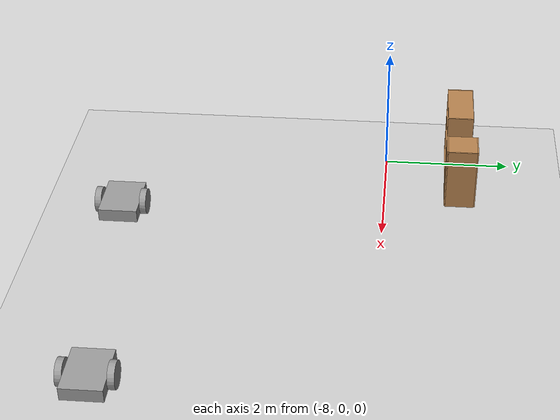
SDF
<sdf version="1.6">
 <world name="default">
  <model name="ground_plane">
   <static>1</static>
   <link name="link">
    <collision name="collision">
     <geometry><plane><normal>0 0 1</normal><size>100 100</size></plane></geometry>
     <surface>
      <contact><collide_bitmask>65535</collide_bitmask></contact>
      <friction><ode><mu>100</mu><mu2>50</mu2></ode></friction>
     </surface>
    </collision>
    <visual name="visual">
     <cast_shadows>0</cast_shadows>
     <geometry><plane><normal>0 0 1</normal><size>100 100</size></plane></geometry>
     <material>
      <script><uri>file://media/materials/scripts/gazebo.material</uri><name>Gazebo/Grey</name></script>
     </material>
    </visual>
   </link>
  </model>
  <model name="bookshelf">
   <static>1</static>
   <link name="link">
    <inertial><mass>1</mass></inertial>
    <collision name="back">
     <pose>0 0.005 0.6 0 -0 0</pose>
     <geometry><box><size>0.9 0.01 1.2</size></box></geometry>
    </collision>
    <visual name="visual1">
     <pose>0 0.005 0.6 0 -0 0</pose>
     <geometry><box><size>0.9 0.01 1.2</size></box></geometry>
     <material>
      <script><uri>file://media/materials/scripts/gazebo.material</uri><name>Gazebo/Wood</name></script>
     </material>
    </visual>
    <collision name="left_side">
     <pose>0.45 -0.195 0.6 0 -0 0</pose>
     <geometry><box><size>0.02 0.4 1.2</size></box></geometry>
    </collision>
    <visual name="visual2">
     <pose>0.45 -0.195 0.6 0 -0 0</pose>
     <geometry><box><size>0.02 0.4 1.2</size></box></geometry>
     <material>
      <script><uri>file://media/materials/scripts/gazebo.material</uri><name>Gazebo/Wood</name></script>
     </material>
    </visual>
    <collision name="right_side">
     <pose>-0.45 -0.195 0.6 0 -0 0</pose>
     <geometry><box><size>0.02 0.4 1.2</size></box></geometry>
    </collision>
    <visual name="visual3">
     <pose>-0.45 -0.195 0.6 0 -0 0</pose>
     <geometry><box><size>0.02 0.4 1.2</size></box></geometry>
     <material>
      <script><uri>file://media/materials/scripts/gazebo.material</uri><name>Gazebo/Wood</name></script>
     </material>
    </visual>
    <collision name="bottom">
     <pose>0 -0.195 0.03 0 -0 0</pose>
     <geometry><box><size>0.88 0.4 0.06</size></box></geometry>
    </collision>
    <visual name="visual4">
     <pose>0 -0.195 0.03 0 -0 0</pose>
     <geometry><box><size>0.88 0.4 0.06</size></box></geometry>
     <material>
      <script><uri>file://media/materials/scripts/gazebo.material</uri><name>Gazebo/Wood</name></script>
     </material>
    </visual>
    <collision name="top">
     <pose>0 -0.195 1.19 0 -0 0</pose>
     <geometry><box><size>0.88 0.4 0.02</size></box></geometry>
    </collision>
    <visual name="visual5">
     <pose>0 -0.195 1.19 0 -0 0</pose>
     <geometry><box><size>0.88 0.4 0.02</size></box></geometry>
     <material>
      <script><uri>file://media/materials/scripts/gazebo.material</uri><name>Gazebo/Wood</name></script>
     </material>
    </visual>
    <collision name="low_shelf">
     <pose>0 -0.195 0.43 0 -0 0</pose>
     <geometry><box><size>0.88 0.4 0.02</size></box></geometry>
    </collision>
    <visual name="visual6">
     <pose>0 -0.195 0.43 0 -0 0</pose>
     <geometry><box><size>0.88 0.4 0.02</size></box></geometry>
     <material>
      <script><uri>file://media/materials/scripts/gazebo.material</uri><name>Gazebo/Wood</name></script>
     </material>
    </visual>
    <collision name="high_shelf">
     <pose>0 -0.195 0.8 0 -0 0</pose>
     <geometry><box><size>0.88 0.4 0.02</size></box></geometry>
    </collision>
    <visual name="visual7">
     <pose>0 -0.195 0.8 0 -0 0</pose>
     <geometry><box><size>0.88 0.4 0.02</size></box></geometry>
     <material>
      <script><uri>file://media/materials/scripts/gazebo.material</uri><name>Gazebo/Wood</name></script>
     </material>
    </visual>
   </link>
   <pose>-7.95164 1.36016 0 0 -0 0</pose>
  </model>
  <model name="cabinet">
   <static>1</static>
   <link name="cabinet_bottom_plate">
    <inertial>
     <pose>0 0 -1 0 -0 0</pose>
     <inertia><ixx>2.05</ixx><ixy>0</ixy><ixz>0</ixz><iyy>2.05</iyy><iyz>0</iyz><izz>2.05</izz></inertia>
     <mass>25</mass>
    </inertial>
    <collision name="cabinet_bottom_plate_geom">
     <pose>0 0 0.01 0 -0 0</pose>
     <geometry><box><size>0.45 0.45 0.02</size></box></geometry>
    </collision>
    <visual name="cabinet_bottom_plate_geom_visual">
     <pose>0 0 0.01 0 -0 0</pose>
     <geometry><box><size>0.45 0.45 0.02</size></box></geometry>
     <material>
      <script><uri>file://media/materials/scripts/gazebo.material</uri><name>Gazebo/Wood</name></script>
     </material>
    </visual>
    <collision name="cabinet_bottom_plate_geom_cabinet_back_plate">
     <pose>0.235 0 0.51 0 -0 0</pose>
     <geometry><box><size>0.02 0.45 1.02</size></box></geometry>
    </collision>
    <visual name="cabinet_bottom_plate_geom_cabinet_back_plate_visual">
     <pose>0.235 0 0.51 0 -0 0</pose>
     <geometry><box><size>0.02 0.45 1.02</size></box></geometry>
     <material>
      <script><uri>file://media/materials/scripts/gazebo.material</uri><name>Gazebo/Wood</name></script>
     </material>
    </visual>
    <collision name="cabinet_bottom_plate_geom_cabinet_left_plate">
     <pose>0 0.235 0.51 0 -0 0</pose>
     <geometry><box><size>0.45 0.02 1.02</size></box></geometry>
    </collision>
    <visual name="cabinet_bottom_plate_geom_cabinet_left_plate_visual">
     <pose>0 0.235 0.51 0 -0 0</pose>
     <geometry><box><size>0.45 0.02 1.02</size></box></geometry>
     <material>
      <script><uri>file://media/materials/scripts/gazebo.material</uri><name>Gazebo/Wood</name></script>
     </material>
    </visual>
    <collision name="cabinet_bottom_plate_geom_cabinet_middle_plate">
     <pose>0 0 0.51 0 -0 0</pose>
     <geometry><box><size>0.45 0.45 0.02</size></box></geometry>
    </collision>
    <visual name="cabinet_bottom_plate_geom_cabinet_middle_plate_visual">
     <pose>0 0 0.51 0 -0 0</pose>
     <geometry><box><size>0.45 0.45 0.02</size></box></geometry>
     <material>
      <script><uri>file://media/materials/scripts/gazebo.material</uri><name>Gazebo/Wood</name></script>
     </material>
    </visual>
    <collision name="cabinet_bottom_plate_geom_cabinet_right_plate">
     <pose>0 -0.235 0.51 0 -0 0</pose>
     <geometry><box><size>0.45 0.02 1.02</size></box></geometry>
    </collision>
    <visual name="cabinet_bottom_plate_geom_cabinet_right_plate_visual">
     <pose>0 -0.235 0.51 0 -0 0</pose>
     <geometry><box><size>0.45 0.02 1.02</size></box></geometry>
     <material>
      <script><uri>file://media/materials/scripts/gazebo.material</uri><name>Gazebo/Wood</name></script>
     </material>
    </visual>
    <collision name="cabinet_bottom_plate_geom_cabinet_top_plate">
     <pose>0 0 1.01 0 -0 0</pose>
     <geometry><box><size>0.45 0.45 0.02</size></box></geometry>
    </collision>
    <visual name="cabinet_bottom_plate_geom_cabinet_top_plate_visual">
     <pose>0 0 1.01 0 -0 0</pose>
     <geometry><box><size>0.45 0.45 0.02</size></box></geometry>
     <material>
      <script><uri>file://media/materials/scripts/gazebo.material</uri><name>Gazebo/Wood</name></script>
     </material>
    </visual>
   </link>
   <pose>-7.02692 1.19874 0 0 -0 0</pose>
  </model>
  <model name="Zippy_Beta_clone">
   <link name="link">
    <inertial>
     <mass>1</mass>
     <inertia>
      <ixx>0.166667</ixx>
      <ixy>0</ixy>
      <ixz>0</ixz>
      <iyy>0.166667</iyy>
      <iyz>0</iyz>
      <izz>0.166667</izz>
     </inertia>
    </inertial>
    <visual name="visual">
     <geometry><box><size>0.8 0.6 0.2</size></box></geometry>
     <material>
      <script><name>Gazebo/Grey</name><uri>file://media/materials/scripts/gazebo.material</uri></script>
      <shader type="pixel"><normal_map>__default__</normal_map></shader>
      <ambient>0.3 0.3 0.3 1</ambient>
      <diffuse>0.7 0.7 0.7 1</diffuse>
      <specular>0.01 0.01 0.01 1</specular>
      <emissive>0 0 0 1</emissive>
     </material>
    </visual>
    <collision name="collision">
     <geometry><box><size>0.8 0.6 0.2</size></box></geometry>
     <surface>
      <friction>
       <ode><mu>1</mu><mu2>1</mu2><fdir1>0 0 0</fdir1><slip1>0</slip1><slip2>0</slip2></ode>
       <torsional>
        <coefficient>1</coefficient>
        <patch_radius>0</patch_radius>
        <surface_radius>0</surface_radius>
        <use_patch_radius>1</use_patch_radius>
        <ode><slip>0</slip></ode>
       </torsional>
      </friction>
      <bounce><restitution_coefficient>0</restitution_coefficient><threshold>1e+06</threshold></bounce>
      <contact>
       <collide_without_contact>0</collide_without_contact>
       <collide_without_contact_bitmask>1</collide_without_contact_bitmask>
       <collide_bitmask>1</collide_bitmask>
       <ode>
        <soft_cfm>0</soft_cfm>
        <soft_erp>0.2</soft_erp>
        <kp>1e+13</kp>
        <kd>1</kd>
        <max_vel>0.01</max_vel>
        <min_depth>0</min_depth>
       </ode>
       <bullet>
        <split_impulse>1</split_impulse>
        <split_impulse_penetration_threshold>-0.01</split_impulse_penetration_threshold>
        <soft_cfm>0</soft_cfm>
        <soft_erp>0.2</soft_erp>
        <kp>1e+13</kp>
        <kd>1</kd>
       </bullet>
      </contact>
     </surface>
    </collision>
   </link>
   <link name="link_0">
    <inertial>
     <mass>1</mass>
     <inertia><ixx>0.145833</ixx><ixy>0</ixy><ixz>0</ixz><iyy>0.145833</iyy><iyz>0</iyz><izz>0.125</izz></inertia>
    </inertial>
    <pose>0 0.350159 0.02 0 -0 0</pose>
    <visual name="visual">
     <pose>0 0 0 1.57 -0 0</pose>
     <geometry><cylinder><radius>0.2</radius><length>0.1</length></cylinder></geometry>
     <material>
      <lighting>1</lighting>
      <script><uri>file://media/materials/scripts/gazebo.material</uri><name>Gazebo/Grey</name></script>
      <shader type="pixel"><normal_map>__default__</normal_map></shader>
      <ambient>0.3 0.3 0.3 1</ambient>
      <diffuse>0.7 0.7 0.7 1</diffuse>
      <specular>0.01 0.01 0.01 1</specular>
      <emissive>0 0 0 1</emissive>
     </material>
    </visual>
    <collision name="collision">
     <pose>0 0 0 1.57 -0 0</pose>
     <geometry><cylinder><radius>0.2</radius><length>0.1</length></cylinder></geometry>
     <surface>
      <friction>
       <ode><mu>1</mu><mu2>1</mu2><fdir1>0 0 0</fdir1><slip1>0</slip1><slip2>0</slip2></ode>
       <torsional>
        <coefficient>1</coefficient>
        <patch_radius>0</patch_radius>
        <surface_radius>0</surface_radius>
        <use_patch_radius>1</use_patch_radius>
        <ode><slip>0</slip></ode>
       </torsional>
      </friction>
      <bounce><restitution_coefficient>0</restitution_coefficient><threshold>1e+06</threshold></bounce>
      <contact>
       <collide_without_contact>0</collide_without_contact>
       <collide_without_contact_bitmask>1</collide_without_contact_bitmask>
       <collide_bitmask>1</collide_bitmask>
       <ode>
        <soft_cfm>0</soft_cfm>
        <soft_erp>0.2</soft_erp>
        <kp>1e+13</kp>
        <kd>1</kd>
        <max_vel>0.01</max_vel>
        <min_depth>0</min_depth>
       </ode>
       <bullet>
        <split_impulse>1</split_impulse>
        <split_impulse_penetration_threshold>-0.01</split_impulse_penetration_threshold>
        <soft_cfm>0</soft_cfm>
        <soft_erp>0.2</soft_erp>
        <kp>1e+13</kp>
        <kd>1</kd>
       </bullet>
      </contact>
     </surface>
    </collision>
   </link>
   <link name="link_0_clone">
    <inertial>
     <mass>1</mass>
     <inertia><ixx>0.145833</ixx><ixy>0</ixy><ixz>0</ixz><iyy>0.145833</iyy><iyz>0</iyz><izz>0.125</izz></inertia>
    </inertial>
    <pose>0 -0.350159 0.02 0 -0 0</pose>
    <visual name="visual">
     <pose>0 0 0 1.57 -0 0</pose>
     <geometry><cylinder><radius>0.2</radius><length>0.1</length></cylinder></geometry>
     <material>
      <lighting>1</lighting>
      <script><uri>file://media/materials/scripts/gazebo.material</uri><name>Gazebo/Grey</name></script>
      <shader type="pixel"><normal_map>__default__</normal_map></shader>
      <ambient>0.3 0.3 0.3 1</ambient>
      <diffuse>0.7 0.7 0.7 1</diffuse>
      <specular>0.01 0.01 0.01 1</specular>
      <emissive>0 0 0 1</emissive>
     </material>
    </visual>
    <collision name="collision">
     <pose>0 0 0 1.57 -0 0</pose>
     <geometry><cylinder><radius>0.2</radius><length>0.1</length></cylinder></geometry>
     <surface>
      <friction>
       <ode><mu>1</mu><mu2>1</mu2><fdir1>0 0 0</fdir1><slip1>0</slip1><slip2>0</slip2></ode>
       <torsional>
        <coefficient>1</coefficient>
        <patch_radius>0</patch_radius>
        <surface_radius>0</surface_radius>
        <use_patch_radius>1</use_patch_radius>
        <ode><slip>0</slip></ode>
       </torsional>
      </friction>
      <bounce><restitution_coefficient>0</restitution_coefficient><threshold>1e+06</threshold></bounce>
      <contact>
       <collide_without_contact>0</collide_without_contact>
       <collide_without_contact_bitmask>1</collide_without_contact_bitmask>
       <collide_bitmask>1</collide_bitmask>
       <ode>
        <soft_cfm>0</soft_cfm>
        <soft_erp>0.2</soft_erp>
        <kp>1e+13</kp>
        <kd>1</kd>
        <max_vel>0.01</max_vel>
        <min_depth>0</min_depth>
       </ode>
       <bullet>
        <split_impulse>1</split_impulse>
        <split_impulse_penetration_threshold>-0.01</split_impulse_penetration_threshold>
        <soft_cfm>0</soft_cfm>
        <soft_erp>0.2</soft_erp>
        <kp>1e+13</kp>
        <kd>1</kd>
       </bullet>
      </contact>
     </surface>
    </collision>
   </link>
   <joint name="link_JOINT_0" type="revolute">
    <parent>link</parent>
    <child>link_0</child>
    <axis>
     <xyz>1 0 0</xyz>
     <use_parent_model_frame>0</use_parent_model_frame>
     <limit>
      <lower>-1.79769e+308</lower>
      <upper>1.79769e+308</upper>
      <effort>-1</effort>
      <velocity>-1</velocity>
     </limit>
     <dynamics>
      <spring_reference>0</spring_reference>
      <spring_stiffness>0</spring_stiffness>
      <damping>0</damping>
     </dynamics>
    </axis>
    <physics>
     <ode><limit><cfm>0</cfm><erp>0.2</erp></limit><suspension><cfm>0</cfm><erp>0.2</erp></suspension></ode>
    </physics>
   </joint>
   <joint name="link_JOINT_1" type="revolute">
    <parent>link</parent>
    <child>link_0_clone</child>
    <axis>
     <xyz>1 0 0</xyz>
     <use_parent_model_frame>0</use_parent_model_frame>
     <limit>
      <lower>-1.79769e+308</lower>
      <upper>1.79769e+308</upper>
      <effort>-1</effort>
      <velocity>-1</velocity>
     </limit>
     <dynamics>
      <spring_reference>0</spring_reference>
      <spring_stiffness>0</spring_stiffness>
      <damping>0</damping>
     </dynamics>
    </axis>
    <physics>
     <ode><limit><cfm>0</cfm><erp>0.2</erp></limit><suspension><cfm>0</cfm><erp>0.2</erp></suspension></ode>
    </physics>
   </joint>
   <static>0</static>
   <pose>-6.27141 -4.09047 0.18 0 -0 0</pose>
  </model>
  <model name="Zippy_Beta_clone_0">
   <link name="link">
    <inertial>
     <mass>1</mass>
     <inertia>
      <ixx>0.166667</ixx>
      <ixy>0</ixy>
      <ixz>0</ixz>
      <iyy>0.166667</iyy>
      <iyz>0</iyz>
      <izz>0.166667</izz>
     </inertia>
    </inertial>
    <visual name="visual">
     <geometry><box><size>0.8 0.6 0.2</size></box></geometry>
     <material>
      <script><name>Gazebo/Grey</name><uri>file://media/materials/scripts/gazebo.material</uri></script>
      <shader type="pixel"><normal_map>__default__</normal_map></shader>
      <ambient>0.3 0.3 0.3 1</ambient>
      <diffuse>0.7 0.7 0.7 1</diffuse>
      <specular>0.01 0.01 0.01 1</specular>
      <emissive>0 0 0 1</emissive>
     </material>
    </visual>
    <collision name="collision">
     <geometry><box><size>0.8 0.6 0.2</size></box></geometry>
     <surface>
      <friction>
       <ode><mu>1</mu><mu2>1</mu2><fdir1>0 0 0</fdir1><slip1>0</slip1><slip2>0</slip2></ode>
       <torsional>
        <coefficient>1</coefficient>
        <patch_radius>0</patch_radius>
        <surface_radius>0</surface_radius>
        <use_patch_radius>1</use_patch_radius>
        <ode><slip>0</slip></ode>
       </torsional>
      </friction>
      <bounce><restitution_coefficient>0</restitution_coefficient><threshold>1e+06</threshold></bounce>
      <contact>
       <collide_without_contact>0</collide_without_contact>
       <collide_without_contact_bitmask>1</collide_without_contact_bitmask>
       <collide_bitmask>1</collide_bitmask>
       <ode>
        <soft_cfm>0</soft_cfm>
        <soft_erp>0.2</soft_erp>
        <kp>1e+13</kp>
        <kd>1</kd>
        <max_vel>0.01</max_vel>
        <min_depth>0</min_depth>
       </ode>
       <bullet>
        <split_impulse>1</split_impulse>
        <split_impulse_penetration_threshold>-0.01</split_impulse_penetration_threshold>
        <soft_cfm>0</soft_cfm>
        <soft_erp>0.2</soft_erp>
        <kp>1e+13</kp>
        <kd>1</kd>
       </bullet>
      </contact>
     </surface>
    </collision>
   </link>
   <link name="link_0">
    <inertial>
     <mass>1</mass>
     <inertia><ixx>0.145833</ixx><ixy>0</ixy><ixz>0</ixz><iyy>0.145833</iyy><iyz>0</iyz><izz>0.125</izz></inertia>
    </inertial>
    <pose>0 0.350159 0.02 0 -0 0</pose>
    <visual name="visual">
     <pose>0 0 0 1.57 -0 0</pose>
     <geometry><cylinder><radius>0.2</radius><length>0.1</length></cylinder></geometry>
     <material>
      <lighting>1</lighting>
      <script><uri>file://media/materials/scripts/gazebo.material</uri><name>Gazebo/Grey</name></script>
      <shader type="pixel"><normal_map>__default__</normal_map></shader>
      <ambient>0.3 0.3 0.3 1</ambient>
      <diffuse>0.7 0.7 0.7 1</diffuse>
      <specular>0.01 0.01 0.01 1</specular>
      <emissive>0 0 0 1</emissive>
     </material>
    </visual>
    <collision name="collision">
     <pose>0 0 0 1.57 -0 0</pose>
     <geometry><cylinder><radius>0.2</radius><length>0.1</length></cylinder></geometry>
     <surface>
      <friction>
       <ode><mu>1</mu><mu2>1</mu2><fdir1>0 0 0</fdir1><slip1>0</slip1><slip2>0</slip2></ode>
       <torsional>
        <coefficient>1</coefficient>
        <patch_radius>0</patch_radius>
        <surface_radius>0</surface_radius>
        <use_patch_radius>1</use_patch_radius>
        <ode><slip>0</slip></ode>
       </torsional>
      </friction>
      <bounce><restitution_coefficient>0</restitution_coefficient><threshold>1e+06</threshold></bounce>
      <contact>
       <collide_without_contact>0</collide_without_contact>
       <collide_without_contact_bitmask>1</collide_without_contact_bitmask>
       <collide_bitmask>1</collide_bitmask>
       <ode>
        <soft_cfm>0</soft_cfm>
        <soft_erp>0.2</soft_erp>
        <kp>1e+13</kp>
        <kd>1</kd>
        <max_vel>0.01</max_vel>
        <min_depth>0</min_depth>
       </ode>
       <bullet>
        <split_impulse>1</split_impulse>
        <split_impulse_penetration_threshold>-0.01</split_impulse_penetration_threshold>
        <soft_cfm>0</soft_cfm>
        <soft_erp>0.2</soft_erp>
        <kp>1e+13</kp>
        <kd>1</kd>
       </bullet>
      </contact>
     </surface>
    </collision>
   </link>
   <link name="link_0_clone">
    <inertial>
     <mass>1</mass>
     <inertia><ixx>0.145833</ixx><ixy>0</ixy><ixz>0</ixz><iyy>0.145833</iyy><iyz>0</iyz><izz>0.125</izz></inertia>
    </inertial>
    <pose>0 -0.350159 0.02 0 -0 0</pose>
    <visual name="visual">
     <pose>0 0 0 1.57 -0 0</pose>
     <geometry><cylinder><radius>0.2</radius><length>0.1</length></cylinder></geometry>
     <material>
      <lighting>1</lighting>
      <script><uri>file://media/materials/scripts/gazebo.material</uri><name>Gazebo/Grey</name></script>
      <shader type="pixel"><normal_map>__default__</normal_map></shader>
      <ambient>0.3 0.3 0.3 1</ambient>
      <diffuse>0.7 0.7 0.7 1</diffuse>
      <specular>0.01 0.01 0.01 1</specular>
      <emissive>0 0 0 1</emissive>
     </material>
    </visual>
    <collision name="collision">
     <pose>0 0 0 1.57 -0 0</pose>
     <geometry><cylinder><radius>0.2</radius><length>0.1</length></cylinder></geometry>
     <surface>
      <friction>
       <ode><mu>1</mu><mu2>1</mu2><fdir1>0 0 0</fdir1><slip1>0</slip1><slip2>0</slip2></ode>
       <torsional>
        <coefficient>1</coefficient>
        <patch_radius>0</patch_radius>
        <surface_radius>0</surface_radius>
        <use_patch_radius>1</use_patch_radius>
        <ode><slip>0</slip></ode>
       </torsional>
      </friction>
      <bounce><restitution_coefficient>0</restitution_coefficient><threshold>1e+06</threshold></bounce>
      <contact>
       <collide_without_contact>0</collide_without_contact>
       <collide_without_contact_bitmask>1</collide_without_contact_bitmask>
       <collide_bitmask>1</collide_bitmask>
       <ode>
        <soft_cfm>0</soft_cfm>
        <soft_erp>0.2</soft_erp>
        <kp>1e+13</kp>
        <kd>1</kd>
        <max_vel>0.01</max_vel>
        <min_depth>0</min_depth>
       </ode>
       <bullet>
        <split_impulse>1</split_impulse>
        <split_impulse_penetration_threshold>-0.01</split_impulse_penetration_threshold>
        <soft_cfm>0</soft_cfm>
        <soft_erp>0.2</soft_erp>
        <kp>1e+13</kp>
        <kd>1</kd>
       </bullet>
      </contact>
     </surface>
    </collision>
   </link>
   <joint name="link_JOINT_0" type="revolute">
    <parent>link</parent>
    <child>link_0</child>
    <axis>
     <xyz>1 0 0</xyz>
     <use_parent_model_frame>0</use_parent_model_frame>
     <limit>
      <lower>-1.79769e+308</lower>
      <upper>1.79769e+308</upper>
      <effort>-1</effort>
      <velocity>-1</velocity>
     </limit>
     <dynamics>
      <spring_reference>0</spring_reference>
      <spring_stiffness>0</spring_stiffness>
      <damping>0</damping>
     </dynamics>
    </axis>
    <physics>
     <ode><limit><cfm>0</cfm><erp>0.2</erp></limit><suspension><cfm>0</cfm><erp>0.2</erp></suspension></ode>
    </physics>
   </joint>
   <joint name="link_JOINT_1" type="revolute">
    <parent>link</parent>
    <child>link_0_clone</child>
    <axis>
     <xyz>1 0 0</xyz>
     <use_parent_model_frame>0</use_parent_model_frame>
     <limit>
      <lower>-1.79769e+308</lower>
      <upper>1.79769e+308</upper>
      <effort>-1</effort>
      <velocity>-1</velocity>
     </limit>
     <dynamics>
      <spring_reference>0</spring_reference>
      <spring_stiffness>0</spring_stiffness>
      <damping>0</damping>
     </dynamics>
    </axis>
    <physics>
     <ode><limit><cfm>0</cfm><erp>0.2</erp></limit><suspension><cfm>0</cfm><erp>0.2</erp></suspension></ode>
    </physics>
   </joint>
   <static>0</static>
   <pose>-2.33085 -3.73435 0.179995 9e-06 -0 0</pose>
  </model>
 </world>
</sdf>
